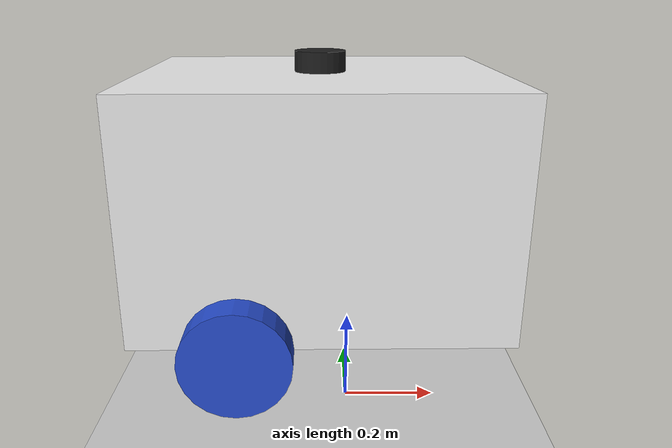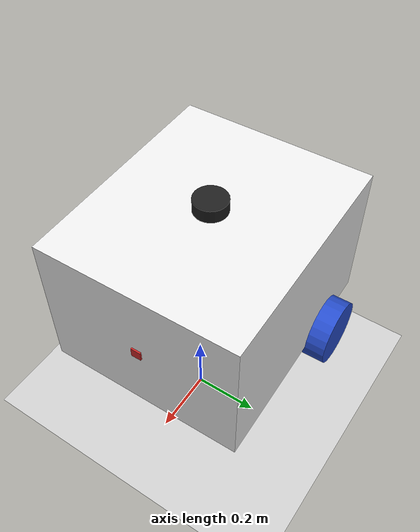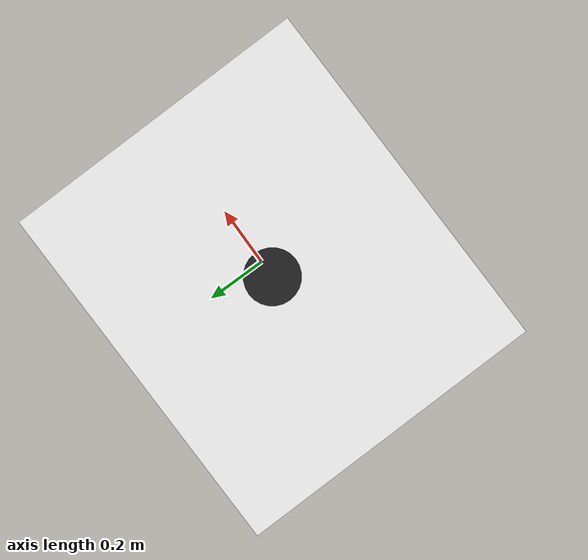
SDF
<sdf version="1.7">
 <world name="default">
  <light name="sun" type="directional">
   <pose>0 0 10 0 -0 0</pose>
   <diffuse>0.8 0.8 0.8 1</diffuse>
   <specular>0.2 0.2 0.2 1</specular>
   <attenuation>
    <range>1000</range>
    <constant>0.9</constant>
    <linear>0.01</linear>
    <quadratic>0.001</quadratic>
   </attenuation>
   <direction>-0.5 0.1 -0.9</direction>
   <spot><inner_angle>0</inner_angle><outer_angle>0</outer_angle><falloff>0</falloff></spot>
  </light>
  <model name="ground_plane">
   <static>1</static>
   <link name="link">
    <collision name="collision">
     <geometry><plane><normal>0 0 1</normal><size>100 100</size></plane></geometry>
     <surface><friction><ode><mu>100</mu><mu2>50</mu2></ode></friction></surface>
    </collision>
    <visual name="visual">
     <cast_shadows>0</cast_shadows>
     <geometry><plane><normal>0 0 1</normal><size>100 100</size></plane></geometry>
     <material>
      <script><uri>file://media/materials/scripts/gazebo.material</uri><name>Gazebo/Grey</name></script>
     </material>
    </visual>
   </link>
  </model>
  <gravity>0 0 -9.8</gravity>
  <magnetic_field>6e-06 2.3e-05 -4.2e-05</magnetic_field>
  <atmosphere type="adiabatic"/>
  <physics type="ode">
   <max_step_size>0.001</max_step_size>
   <real_time_factor>1</real_time_factor>
   <real_time_update_rate>1000</real_time_update_rate>
  </physics>
  <scene><ambient>0.4 0.4 0.4 1</ambient><background>0.7 0.7 0.7 1</background><shadows>1</shadows></scene>
  <audio><device>default</device></audio>
  <spherical_coordinates>
   <surface_model>EARTH_WGS84</surface_model>
   <latitude_deg>0</latitude_deg>
   <longitude_deg>0</longitude_deg>
   <elevation>0</elevation>
   <heading_deg>0</heading_deg>
  </spherical_coordinates>
  <model name="my_bot">
   <link name="base_link">
    <inertial>
     <pose>0.253846 0 0.225385 0 -0 0</pose>
     <mass>5.2</mass>
     <inertia>
      <ixx>0.245915</ixx>
      <ixy>0</ixy>
      <ixz>0.00450769</ixz>
      <iyy>0.304005</iyy>
      <iyz>0</iyz>
      <izz>0.358615</izz>
     </inertia>
    </inertial>
    <collision name="base_link_fixed_joint_lump__chassis_collision">
     <pose>0.25 0 0.225 0 -0 0</pose>
     <geometry><box><size>0.7 0.6 0.45</size></box></geometry>
    </collision>
    <collision name="base_link_fixed_joint_lump__caster_wheel_collision_1">
     <pose>0.45 0 0 0 -0 0</pose>
     <geometry><sphere><radius>0.1</radius></sphere></geometry>
     <surface><friction><ode><mu>0.02</mu><mu2>0.02</mu2></ode></friction></surface>
    </collision>
    <collision name="base_link_fixed_joint_lump__laser_collision_2">
     <pose>0.25 0 0.47 0 -0 0</pose>
     <geometry><cylinder><length>0.04</length><radius>0.05</radius></cylinder></geometry>
    </collision>
    <visual name="base_link_fixed_joint_lump__chassis_visual">
     <pose>0.25 0 0.225 0 -0 0</pose>
     <geometry><box><size>0.7 0.6 0.45</size></box></geometry>
     <material>
      <script><name>Gazebo/White</name><uri>file://media/materials/scripts/gazebo.material</uri></script>
     </material>
    </visual>
    <visual name="base_link_fixed_joint_lump__camera_link_visual_1">
     <pose>0.6 0 0.225 0 -0 0</pose>
     <geometry><box><size>0.01 0.03 0.03</size></box></geometry>
     <material>
      <script><name>Gazebo/Red</name><uri>file://media/materials/scripts/gazebo.material</uri></script>
     </material>
    </visual>
    <visual name="base_link_fixed_joint_lump__caster_wheel_visual_2">
     <pose>0.45 0 0 0 -0 0</pose>
     <geometry><sphere><radius>0.1</radius></sphere></geometry>
     <material>
      <script><name>Gazebo/Black</name><uri>file://media/materials/scripts/gazebo.material</uri></script>
     </material>
    </visual>
    <visual name="base_link_fixed_joint_lump__laser_visual_3">
     <pose>0.25 0 0.47 0 -0 0</pose>
     <geometry><cylinder><length>0.04</length><radius>0.05</radius></cylinder></geometry>
     <material>
      <script><name>Gazebo/Black</name><uri>file://media/materials/scripts/gazebo.material</uri></script>
     </material>
    </visual>
    <sensor name="camera" type="camera">
     <visualize>1</visualize>
     <update_rate>10</update_rate>
     <camera>
      <horizontal_fov>1.089</horizontal_fov>
      <image><format>R8G8B8</format><width>640</width><height>480</height></image>
      <clip><near>0.05</near><far>15</far></clip>
     </camera>
     <plugin name="camera_controller" filename="libgazebo_ros_camera.so">
      <frame_name>camera_link_optical</frame_name>
     </plugin>
     <pose>0.6 0 0.225 0 -0 0</pose>
    </sensor>
    <sensor name="laser" type="ray">
     <visualize>1</visualize>
     <update_rate>10</update_rate>
     <ray>
      <scan>
       <horizontal>
        <samples>360</samples>
        <resolution>1</resolution>
        <min_angle>-3.14</min_angle>
        <max_angle>3.14</max_angle>
       </horizontal>
       <vertical><samples>1</samples><min_angle>0</min_angle><max_angle>0</max_angle></vertical>
      </scan>
      <range><resolution>0.01</resolution><min>0.5</min><max>16</max></range>
     </ray>
     <plugin name="laser_controller" filename="libgazebo_ros_ray_sensor.so">
      <ros><argument>~/out:=scan</argument></ros>
      <output_type>sensor_msgs/LaserScan</output_type>
      <frame_name>laser</frame_name>
     </plugin>
     <pose>0.25 0 0.47 0 -0 0</pose>
    </sensor>
   </link>
   <joint name="left_back_wheel_joint" type="revolute">
    <pose relative_to="base_link">0.1 0.325 0 -1.5708 0 0</pose>
    <parent>base_link</parent>
    <child>left_back_wheel</child>
    <axis>
     <xyz>0 0 1</xyz>
     <limit><lower>-1e+16</lower><upper>1e+16</upper></limit>
     <dynamics><spring_reference>0</spring_reference><spring_stiffness>0</spring_stiffness></dynamics>
    </axis>
   </joint>
   <link name="left_back_wheel">
    <pose relative_to="left_back_wheel_joint">0 0 0 0 -0 0</pose>
    <inertial>
     <mass>0.1</mass>
     <inertia>
      <ixx>0.000290833</ixx>
      <ixy>0</ixy>
      <ixz>0</ixz>
      <iyy>0.000290833</iyy>
      <iyz>0</iyz>
      <izz>0.0005</izz>
     </inertia>
    </inertial>
    <collision name="left_back_wheel_collision">
     <geometry><sphere><radius>0.1</radius></sphere></geometry>
    </collision>
    <visual name="left_back_wheel_visual">
     <geometry><cylinder><length>0.07</length><radius>0.1</radius></cylinder></geometry>
     <material>
      <script><name>Gazebo/Blue</name><uri>file://media/materials/scripts/gazebo.material</uri></script>
     </material>
    </visual>
   </link>
   <joint name="right_back_wheel_joint" type="revolute">
    <pose relative_to="base_link">0.1 -0.325 0 1.5708 -0 0</pose>
    <parent>base_link</parent>
    <child>right_back_wheel</child>
    <axis>
     <xyz>0 0 -1</xyz>
     <limit><lower>-1e+16</lower><upper>1e+16</upper></limit>
     <dynamics><spring_reference>0</spring_reference><spring_stiffness>0</spring_stiffness></dynamics>
    </axis>
   </joint>
   <link name="right_back_wheel">
    <pose relative_to="right_back_wheel_joint">0 0 0 0 -0 0</pose>
    <inertial>
     <mass>0.1</mass>
     <inertia>
      <ixx>0.000290833</ixx>
      <ixy>0</ixy>
      <ixz>0</ixz>
      <iyy>0.000290833</iyy>
      <iyz>0</iyz>
      <izz>0.0005</izz>
     </inertia>
    </inertial>
    <collision name="right_back_wheel_collision">
     <geometry><sphere><radius>0.1</radius></sphere></geometry>
    </collision>
    <visual name="right_back_wheel_visual">
     <geometry><cylinder><length>0.07</length><radius>0.1</radius></cylinder></geometry>
     <material>
      <script><name>Gazebo/Blue</name><uri>file://media/materials/scripts/gazebo.material</uri></script>
     </material>
    </visual>
   </link>
   <static>0</static>
   <plugin name="gazebo_ros2_control" filename="libgazebo_ros2_control.so">
    <parameters>/home/bhavesh/DevRobot_ws/install/hosbot_pkg/share/hosbot_pkg/config/my_controllers.yaml</parameters>
   </plugin>
   <pose>-0.309364 -0.005015 0.289799 0 -2e-06 0.020509</pose>
  </model>
 </world>
</sdf>
